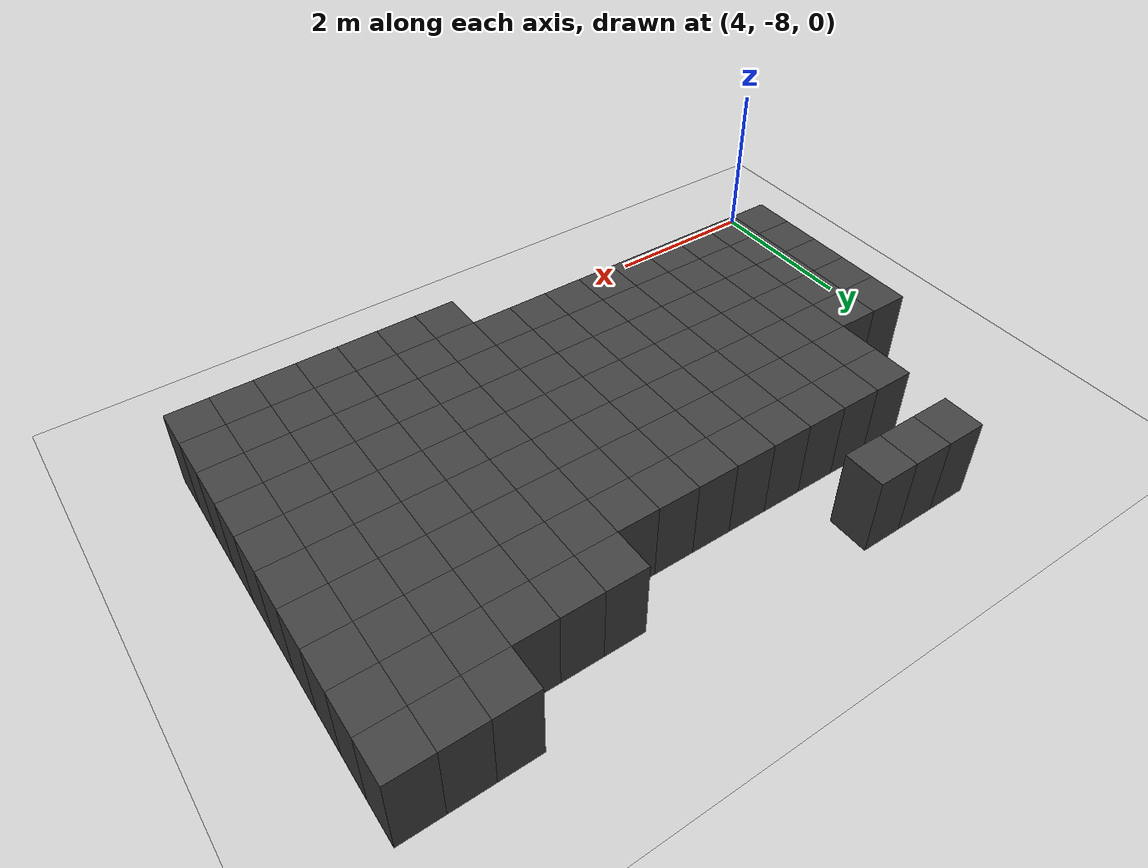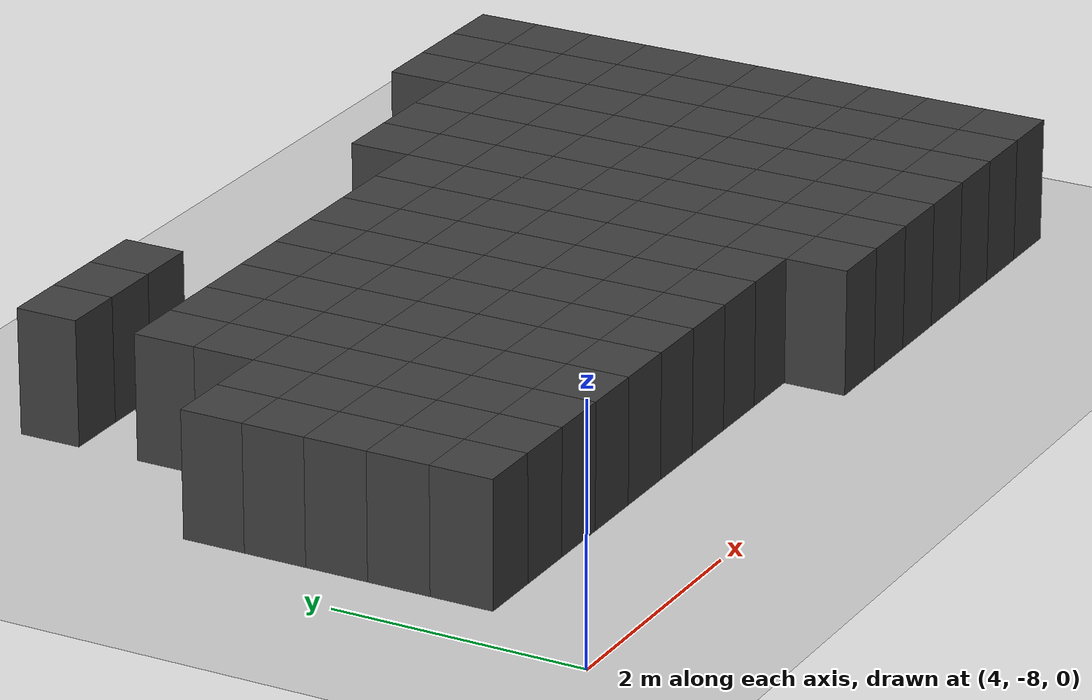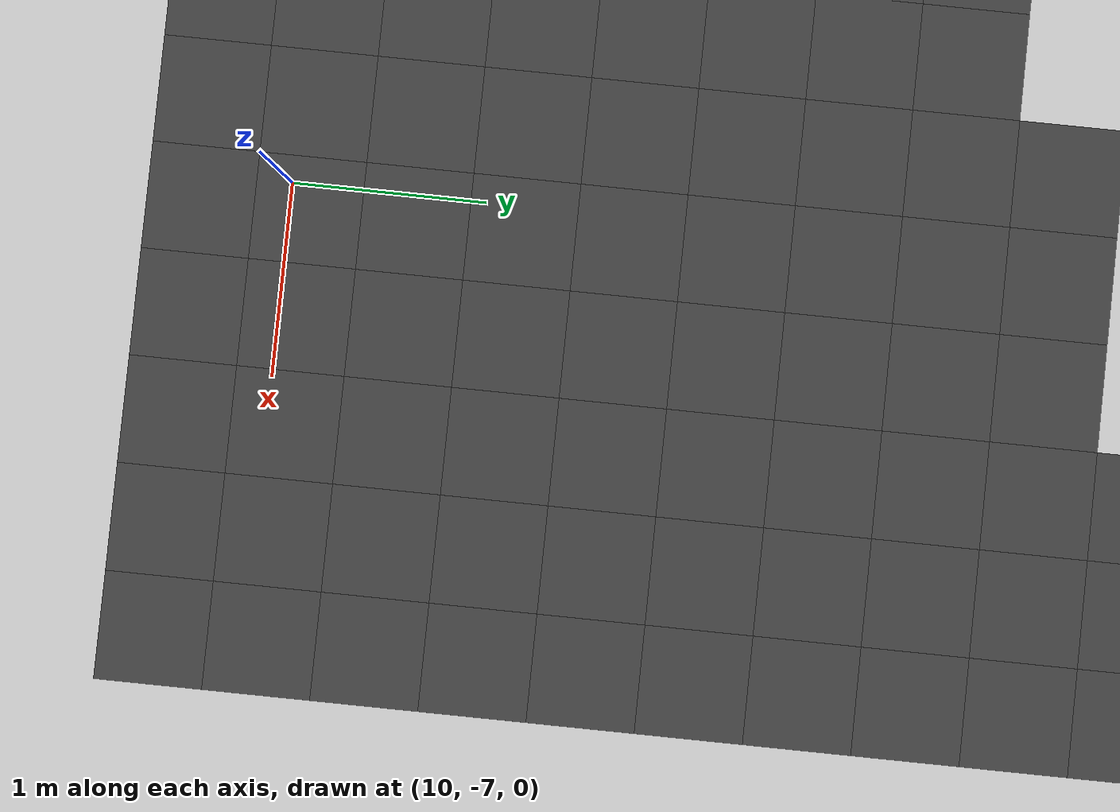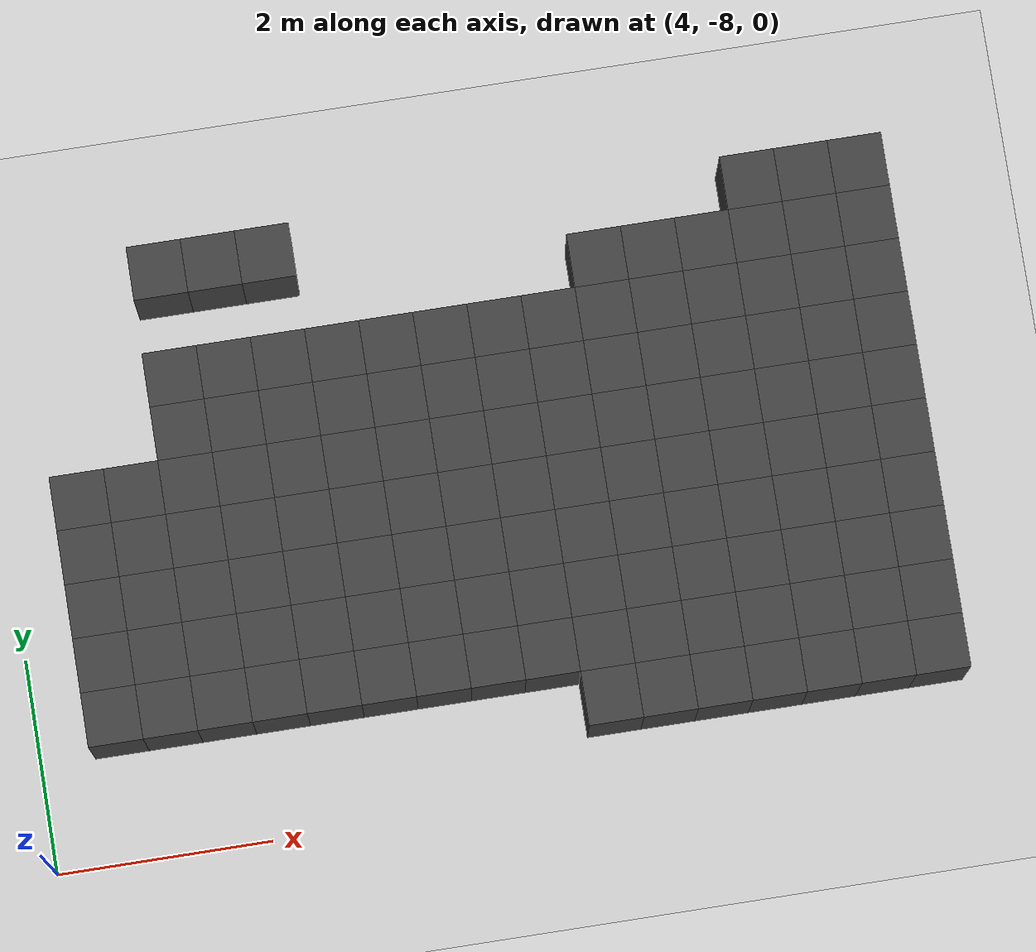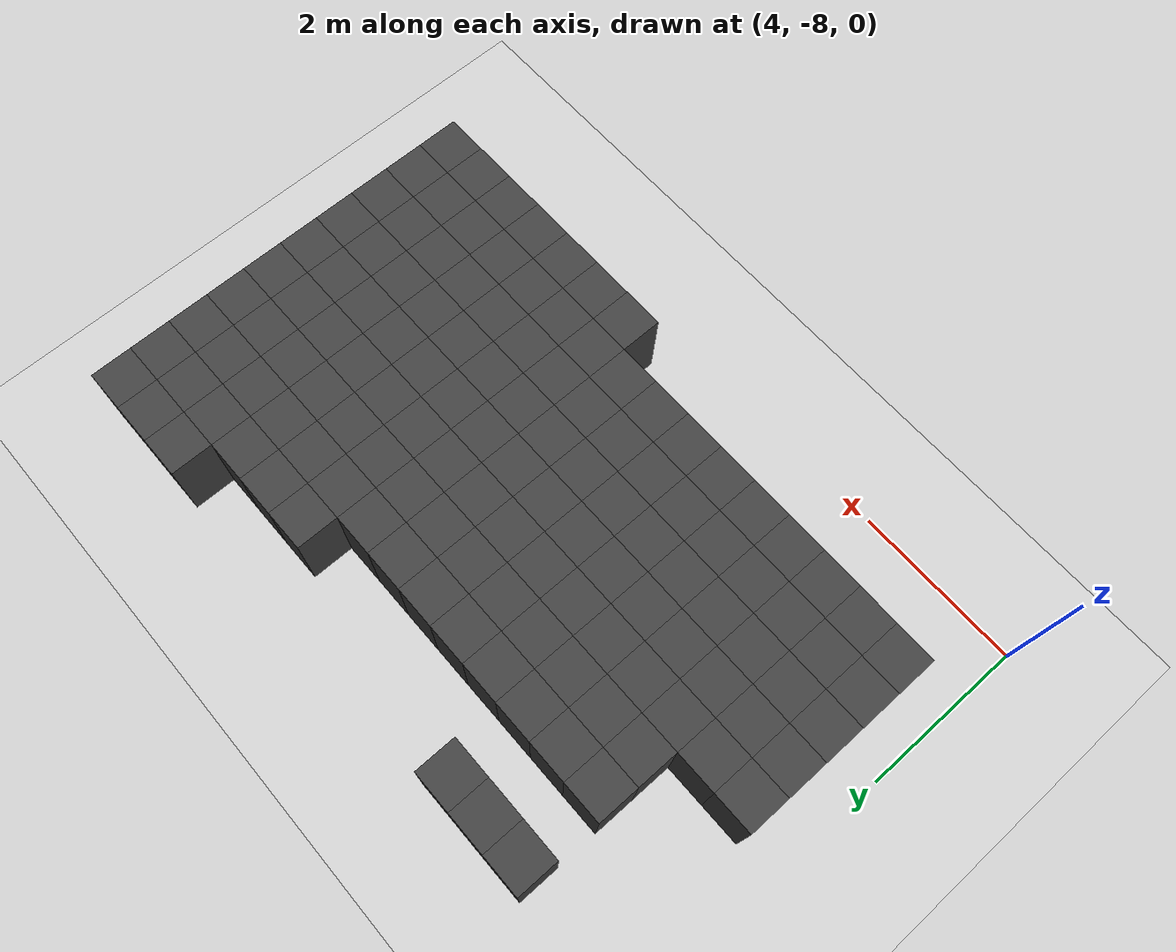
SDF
<sdf version="1.7">
 <world name="map_14056">
  <model name="ground_plane">
   <static>true</static>
   <link name="link">
    <collision name="collision">
     <geometry><plane><normal>0 0 1</normal><size>200 200</size></plane></geometry>
    </collision>
    <visual name="visual">
     <geometry><plane><normal>0 0 1</normal><size>200 200</size></plane></geometry>
     <material><ambient>0.8 0.8 0.8 1</ambient><diffuse>0.8 0.8 0.8 1</diffuse></material>
    </visual>
   </link>
  </model>
  <model name="maze_environment">
   <static>true</static>
   <link name="wall_1097">
    <pose>5.750 -2.750 0.500 0 0 0</pose>
    <collision name="col"><geometry><box><size>0.5 0.5 1.0</size></box></geometry></collision>
    <visual name="vis">
     <geometry><box><size>0.5 0.5 1.0</size></box></geometry>
     <material><ambient>0.15 0.15 0.15 1</ambient><diffuse>0.25 0.25 0.25 1</diffuse></material>
    </visual>
   </link>
   <link name="wall_1098">
    <pose>6.250 -2.750 0.500 0 0 0</pose>
    <collision name="col"><geometry><box><size>0.5 0.5 1.0</size></box></geometry></collision>
    <visual name="vis">
     <geometry><box><size>0.5 0.5 1.0</size></box></geometry>
     <material><ambient>0.15 0.15 0.15 1</ambient><diffuse>0.25 0.25 0.25 1</diffuse></material>
    </visual>
   </link>
   <link name="wall_1099">
    <pose>6.750 -2.750 0.500 0 0 0</pose>
    <collision name="col"><geometry><box><size>0.5 0.5 1.0</size></box></geometry></collision>
    <visual name="vis">
     <geometry><box><size>0.5 0.5 1.0</size></box></geometry>
     <material><ambient>0.15 0.15 0.15 1</ambient><diffuse>0.25 0.25 0.25 1</diffuse></material>
    </visual>
   </link>
   <link name="wall_1100">
    <pose>11.250 -2.750 0.500 0 0 0</pose>
    <collision name="col"><geometry><box><size>0.5 0.5 1.0</size></box></geometry></collision>
    <visual name="vis">
     <geometry><box><size>0.5 0.5 1.0</size></box></geometry>
     <material><ambient>0.15 0.15 0.15 1</ambient><diffuse>0.25 0.25 0.25 1</diffuse></material>
    </visual>
   </link>
   <link name="wall_1101">
    <pose>11.750 -2.750 0.500 0 0 0</pose>
    <collision name="col"><geometry><box><size>0.5 0.5 1.0</size></box></geometry></collision>
    <visual name="vis">
     <geometry><box><size>0.5 0.5 1.0</size></box></geometry>
     <material><ambient>0.15 0.15 0.15 1</ambient><diffuse>0.25 0.25 0.25 1</diffuse></material>
    </visual>
   </link>
   <link name="wall_1102">
    <pose>12.250 -2.750 0.500 0 0 0</pose>
    <collision name="col"><geometry><box><size>0.5 0.5 1.0</size></box></geometry></collision>
    <visual name="vis">
     <geometry><box><size>0.5 0.5 1.0</size></box></geometry>
     <material><ambient>0.15 0.15 0.15 1</ambient><diffuse>0.25 0.25 0.25 1</diffuse></material>
    </visual>
   </link>
   <link name="wall_1125">
    <pose>9.750 -3.250 0.500 0 0 0</pose>
    <collision name="col"><geometry><box><size>0.5 0.5 1.0</size></box></geometry></collision>
    <visual name="vis">
     <geometry><box><size>0.5 0.5 1.0</size></box></geometry>
     <material><ambient>0.15 0.15 0.15 1</ambient><diffuse>0.25 0.25 0.25 1</diffuse></material>
    </visual>
   </link>
   <link name="wall_1126">
    <pose>10.250 -3.250 0.500 0 0 0</pose>
    <collision name="col"><geometry><box><size>0.5 0.5 1.0</size></box></geometry></collision>
    <visual name="vis">
     <geometry><box><size>0.5 0.5 1.0</size></box></geometry>
     <material><ambient>0.15 0.15 0.15 1</ambient><diffuse>0.25 0.25 0.25 1</diffuse></material>
    </visual>
   </link>
   <link name="wall_1127">
    <pose>10.750 -3.250 0.500 0 0 0</pose>
    <collision name="col"><geometry><box><size>0.5 0.5 1.0</size></box></geometry></collision>
    <visual name="vis">
     <geometry><box><size>0.5 0.5 1.0</size></box></geometry>
     <material><ambient>0.15 0.15 0.15 1</ambient><diffuse>0.25 0.25 0.25 1</diffuse></material>
    </visual>
   </link>
   <link name="wall_1128">
    <pose>11.250 -3.250 0.500 0 0 0</pose>
    <collision name="col"><geometry><box><size>0.5 0.5 1.0</size></box></geometry></collision>
    <visual name="vis">
     <geometry><box><size>0.5 0.5 1.0</size></box></geometry>
     <material><ambient>0.15 0.15 0.15 1</ambient><diffuse>0.25 0.25 0.25 1</diffuse></material>
    </visual>
   </link>
   <link name="wall_1129">
    <pose>11.750 -3.250 0.500 0 0 0</pose>
    <collision name="col"><geometry><box><size>0.5 0.5 1.0</size></box></geometry></collision>
    <visual name="vis">
     <geometry><box><size>0.5 0.5 1.0</size></box></geometry>
     <material><ambient>0.15 0.15 0.15 1</ambient><diffuse>0.25 0.25 0.25 1</diffuse></material>
    </visual>
   </link>
   <link name="wall_1130">
    <pose>12.250 -3.250 0.500 0 0 0</pose>
    <collision name="col"><geometry><box><size>0.5 0.5 1.0</size></box></geometry></collision>
    <visual name="vis">
     <geometry><box><size>0.5 0.5 1.0</size></box></geometry>
     <material><ambient>0.15 0.15 0.15 1</ambient><diffuse>0.25 0.25 0.25 1</diffuse></material>
    </visual>
   </link>
   <link name="wall_1153">
    <pose>5.750 -3.750 0.500 0 0 0</pose>
    <collision name="col"><geometry><box><size>0.5 0.5 1.0</size></box></geometry></collision>
    <visual name="vis">
     <geometry><box><size>0.5 0.5 1.0</size></box></geometry>
     <material><ambient>0.15 0.15 0.15 1</ambient><diffuse>0.25 0.25 0.25 1</diffuse></material>
    </visual>
   </link>
   <link name="wall_1154">
    <pose>6.250 -3.750 0.500 0 0 0</pose>
    <collision name="col"><geometry><box><size>0.5 0.5 1.0</size></box></geometry></collision>
    <visual name="vis">
     <geometry><box><size>0.5 0.5 1.0</size></box></geometry>
     <material><ambient>0.15 0.15 0.15 1</ambient><diffuse>0.25 0.25 0.25 1</diffuse></material>
    </visual>
   </link>
   <link name="wall_1155">
    <pose>6.750 -3.750 0.500 0 0 0</pose>
    <collision name="col"><geometry><box><size>0.5 0.5 1.0</size></box></geometry></collision>
    <visual name="vis">
     <geometry><box><size>0.5 0.5 1.0</size></box></geometry>
     <material><ambient>0.15 0.15 0.15 1</ambient><diffuse>0.25 0.25 0.25 1</diffuse></material>
    </visual>
   </link>
   <link name="wall_1156">
    <pose>7.250 -3.750 0.500 0 0 0</pose>
    <collision name="col"><geometry><box><size>0.5 0.5 1.0</size></box></geometry></collision>
    <visual name="vis">
     <geometry><box><size>0.5 0.5 1.0</size></box></geometry>
     <material><ambient>0.15 0.15 0.15 1</ambient><diffuse>0.25 0.25 0.25 1</diffuse></material>
    </visual>
   </link>
   <link name="wall_1157">
    <pose>7.750 -3.750 0.500 0 0 0</pose>
    <collision name="col"><geometry><box><size>0.5 0.5 1.0</size></box></geometry></collision>
    <visual name="vis">
     <geometry><box><size>0.5 0.5 1.0</size></box></geometry>
     <material><ambient>0.15 0.15 0.15 1</ambient><diffuse>0.25 0.25 0.25 1</diffuse></material>
    </visual>
   </link>
   <link name="wall_1158">
    <pose>8.250 -3.750 0.500 0 0 0</pose>
    <collision name="col"><geometry><box><size>0.5 0.5 1.0</size></box></geometry></collision>
    <visual name="vis">
     <geometry><box><size>0.5 0.5 1.0</size></box></geometry>
     <material><ambient>0.15 0.15 0.15 1</ambient><diffuse>0.25 0.25 0.25 1</diffuse></material>
    </visual>
   </link>
   <link name="wall_1159">
    <pose>8.750 -3.750 0.500 0 0 0</pose>
    <collision name="col"><geometry><box><size>0.5 0.5 1.0</size></box></geometry></collision>
    <visual name="vis">
     <geometry><box><size>0.5 0.5 1.0</size></box></geometry>
     <material><ambient>0.15 0.15 0.15 1</ambient><diffuse>0.25 0.25 0.25 1</diffuse></material>
    </visual>
   </link>
   <link name="wall_1160">
    <pose>9.250 -3.750 0.500 0 0 0</pose>
    <collision name="col"><geometry><box><size>0.5 0.5 1.0</size></box></geometry></collision>
    <visual name="vis">
     <geometry><box><size>0.5 0.5 1.0</size></box></geometry>
     <material><ambient>0.15 0.15 0.15 1</ambient><diffuse>0.25 0.25 0.25 1</diffuse></material>
    </visual>
   </link>
   <link name="wall_1161">
    <pose>9.750 -3.750 0.500 0 0 0</pose>
    <collision name="col"><geometry><box><size>0.5 0.5 1.0</size></box></geometry></collision>
    <visual name="vis">
     <geometry><box><size>0.5 0.5 1.0</size></box></geometry>
     <material><ambient>0.15 0.15 0.15 1</ambient><diffuse>0.25 0.25 0.25 1</diffuse></material>
    </visual>
   </link>
   <link name="wall_1162">
    <pose>10.250 -3.750 0.500 0 0 0</pose>
    <collision name="col"><geometry><box><size>0.5 0.5 1.0</size></box></geometry></collision>
    <visual name="vis">
     <geometry><box><size>0.5 0.5 1.0</size></box></geometry>
     <material><ambient>0.15 0.15 0.15 1</ambient><diffuse>0.25 0.25 0.25 1</diffuse></material>
    </visual>
   </link>
   <link name="wall_1163">
    <pose>10.750 -3.750 0.500 0 0 0</pose>
    <collision name="col"><geometry><box><size>0.5 0.5 1.0</size></box></geometry></collision>
    <visual name="vis">
     <geometry><box><size>0.5 0.5 1.0</size></box></geometry>
     <material><ambient>0.15 0.15 0.15 1</ambient><diffuse>0.25 0.25 0.25 1</diffuse></material>
    </visual>
   </link>
   <link name="wall_1164">
    <pose>11.250 -3.750 0.500 0 0 0</pose>
    <collision name="col"><geometry><box><size>0.5 0.5 1.0</size></box></geometry></collision>
    <visual name="vis">
     <geometry><box><size>0.5 0.5 1.0</size></box></geometry>
     <material><ambient>0.15 0.15 0.15 1</ambient><diffuse>0.25 0.25 0.25 1</diffuse></material>
    </visual>
   </link>
   <link name="wall_1165">
    <pose>11.750 -3.750 0.500 0 0 0</pose>
    <collision name="col"><geometry><box><size>0.5 0.5 1.0</size></box></geometry></collision>
    <visual name="vis">
     <geometry><box><size>0.5 0.5 1.0</size></box></geometry>
     <material><ambient>0.15 0.15 0.15 1</ambient><diffuse>0.25 0.25 0.25 1</diffuse></material>
    </visual>
   </link>
   <link name="wall_1166">
    <pose>12.250 -3.750 0.500 0 0 0</pose>
    <collision name="col"><geometry><box><size>0.5 0.5 1.0</size></box></geometry></collision>
    <visual name="vis">
     <geometry><box><size>0.5 0.5 1.0</size></box></geometry>
     <material><ambient>0.15 0.15 0.15 1</ambient><diffuse>0.25 0.25 0.25 1</diffuse></material>
    </visual>
   </link>
   <link name="wall_1185">
    <pose>5.750 -4.250 0.500 0 0 0</pose>
    <collision name="col"><geometry><box><size>0.5 0.5 1.0</size></box></geometry></collision>
    <visual name="vis">
     <geometry><box><size>0.5 0.5 1.0</size></box></geometry>
     <material><ambient>0.15 0.15 0.15 1</ambient><diffuse>0.25 0.25 0.25 1</diffuse></material>
    </visual>
   </link>
   <link name="wall_1186">
    <pose>6.250 -4.250 0.500 0 0 0</pose>
    <collision name="col"><geometry><box><size>0.5 0.5 1.0</size></box></geometry></collision>
    <visual name="vis">
     <geometry><box><size>0.5 0.5 1.0</size></box></geometry>
     <material><ambient>0.15 0.15 0.15 1</ambient><diffuse>0.25 0.25 0.25 1</diffuse></material>
    </visual>
   </link>
   <link name="wall_1187">
    <pose>6.750 -4.250 0.500 0 0 0</pose>
    <collision name="col"><geometry><box><size>0.5 0.5 1.0</size></box></geometry></collision>
    <visual name="vis">
     <geometry><box><size>0.5 0.5 1.0</size></box></geometry>
     <material><ambient>0.15 0.15 0.15 1</ambient><diffuse>0.25 0.25 0.25 1</diffuse></material>
    </visual>
   </link>
   <link name="wall_1188">
    <pose>7.250 -4.250 0.500 0 0 0</pose>
    <collision name="col"><geometry><box><size>0.5 0.5 1.0</size></box></geometry></collision>
    <visual name="vis">
     <geometry><box><size>0.5 0.5 1.0</size></box></geometry>
     <material><ambient>0.15 0.15 0.15 1</ambient><diffuse>0.25 0.25 0.25 1</diffuse></material>
    </visual>
   </link>
   <link name="wall_1189">
    <pose>7.750 -4.250 0.500 0 0 0</pose>
    <collision name="col"><geometry><box><size>0.5 0.5 1.0</size></box></geometry></collision>
    <visual name="vis">
     <geometry><box><size>0.5 0.5 1.0</size></box></geometry>
     <material><ambient>0.15 0.15 0.15 1</ambient><diffuse>0.25 0.25 0.25 1</diffuse></material>
    </visual>
   </link>
   <link name="wall_1190">
    <pose>8.250 -4.250 0.500 0 0 0</pose>
    <collision name="col"><geometry><box><size>0.5 0.5 1.0</size></box></geometry></collision>
    <visual name="vis">
     <geometry><box><size>0.5 0.5 1.0</size></box></geometry>
     <material><ambient>0.15 0.15 0.15 1</ambient><diffuse>0.25 0.25 0.25 1</diffuse></material>
    </visual>
   </link>
   <link name="wall_1191">
    <pose>8.750 -4.250 0.500 0 0 0</pose>
    <collision name="col"><geometry><box><size>0.5 0.5 1.0</size></box></geometry></collision>
    <visual name="vis">
     <geometry><box><size>0.5 0.5 1.0</size></box></geometry>
     <material><ambient>0.15 0.15 0.15 1</ambient><diffuse>0.25 0.25 0.25 1</diffuse></material>
    </visual>
   </link>
   <link name="wall_1192">
    <pose>9.250 -4.250 0.500 0 0 0</pose>
    <collision name="col"><geometry><box><size>0.5 0.5 1.0</size></box></geometry></collision>
    <visual name="vis">
     <geometry><box><size>0.5 0.5 1.0</size></box></geometry>
     <material><ambient>0.15 0.15 0.15 1</ambient><diffuse>0.25 0.25 0.25 1</diffuse></material>
    </visual>
   </link>
   <link name="wall_1193">
    <pose>9.750 -4.250 0.500 0 0 0</pose>
    <collision name="col"><geometry><box><size>0.5 0.5 1.0</size></box></geometry></collision>
    <visual name="vis">
     <geometry><box><size>0.5 0.5 1.0</size></box></geometry>
     <material><ambient>0.15 0.15 0.15 1</ambient><diffuse>0.25 0.25 0.25 1</diffuse></material>
    </visual>
   </link>
   <link name="wall_1194">
    <pose>10.250 -4.250 0.500 0 0 0</pose>
    <collision name="col"><geometry><box><size>0.5 0.5 1.0</size></box></geometry></collision>
    <visual name="vis">
     <geometry><box><size>0.5 0.5 1.0</size></box></geometry>
     <material><ambient>0.15 0.15 0.15 1</ambient><diffuse>0.25 0.25 0.25 1</diffuse></material>
    </visual>
   </link>
   <link name="wall_1195">
    <pose>10.750 -4.250 0.500 0 0 0</pose>
    <collision name="col"><geometry><box><size>0.5 0.5 1.0</size></box></geometry></collision>
    <visual name="vis">
     <geometry><box><size>0.5 0.5 1.0</size></box></geometry>
     <material><ambient>0.15 0.15 0.15 1</ambient><diffuse>0.25 0.25 0.25 1</diffuse></material>
    </visual>
   </link>
   <link name="wall_1196">
    <pose>11.250 -4.250 0.500 0 0 0</pose>
    <collision name="col"><geometry><box><size>0.5 0.5 1.0</size></box></geometry></collision>
    <visual name="vis">
     <geometry><box><size>0.5 0.5 1.0</size></box></geometry>
     <material><ambient>0.15 0.15 0.15 1</ambient><diffuse>0.25 0.25 0.25 1</diffuse></material>
    </visual>
   </link>
   <link name="wall_1197">
    <pose>11.750 -4.250 0.500 0 0 0</pose>
    <collision name="col"><geometry><box><size>0.5 0.5 1.0</size></box></geometry></collision>
    <visual name="vis">
     <geometry><box><size>0.5 0.5 1.0</size></box></geometry>
     <material><ambient>0.15 0.15 0.15 1</ambient><diffuse>0.25 0.25 0.25 1</diffuse></material>
    </visual>
   </link>
   <link name="wall_1198">
    <pose>12.250 -4.250 0.500 0 0 0</pose>
    <collision name="col"><geometry><box><size>0.5 0.5 1.0</size></box></geometry></collision>
    <visual name="vis">
     <geometry><box><size>0.5 0.5 1.0</size></box></geometry>
     <material><ambient>0.15 0.15 0.15 1</ambient><diffuse>0.25 0.25 0.25 1</diffuse></material>
    </visual>
   </link>
   <link name="wall_1224">
    <pose>4.750 -4.750 0.500 0 0 0</pose>
    <collision name="col"><geometry><box><size>0.5 0.5 1.0</size></box></geometry></collision>
    <visual name="vis">
     <geometry><box><size>0.5 0.5 1.0</size></box></geometry>
     <material><ambient>0.15 0.15 0.15 1</ambient><diffuse>0.25 0.25 0.25 1</diffuse></material>
    </visual>
   </link>
   <link name="wall_1225">
    <pose>5.250 -4.750 0.500 0 0 0</pose>
    <collision name="col"><geometry><box><size>0.5 0.5 1.0</size></box></geometry></collision>
    <visual name="vis">
     <geometry><box><size>0.5 0.5 1.0</size></box></geometry>
     <material><ambient>0.15 0.15 0.15 1</ambient><diffuse>0.25 0.25 0.25 1</diffuse></material>
    </visual>
   </link>
   <link name="wall_1226">
    <pose>5.750 -4.750 0.500 0 0 0</pose>
    <collision name="col"><geometry><box><size>0.5 0.5 1.0</size></box></geometry></collision>
    <visual name="vis">
     <geometry><box><size>0.5 0.5 1.0</size></box></geometry>
     <material><ambient>0.15 0.15 0.15 1</ambient><diffuse>0.25 0.25 0.25 1</diffuse></material>
    </visual>
   </link>
   <link name="wall_1227">
    <pose>6.250 -4.750 0.500 0 0 0</pose>
    <collision name="col"><geometry><box><size>0.5 0.5 1.0</size></box></geometry></collision>
    <visual name="vis">
     <geometry><box><size>0.5 0.5 1.0</size></box></geometry>
     <material><ambient>0.15 0.15 0.15 1</ambient><diffuse>0.25 0.25 0.25 1</diffuse></material>
    </visual>
   </link>
   <link name="wall_1228">
    <pose>6.750 -4.750 0.500 0 0 0</pose>
    <collision name="col"><geometry><box><size>0.5 0.5 1.0</size></box></geometry></collision>
    <visual name="vis">
     <geometry><box><size>0.5 0.5 1.0</size></box></geometry>
     <material><ambient>0.15 0.15 0.15 1</ambient><diffuse>0.25 0.25 0.25 1</diffuse></material>
    </visual>
   </link>
   <link name="wall_1229">
    <pose>7.250 -4.750 0.500 0 0 0</pose>
    <collision name="col"><geometry><box><size>0.5 0.5 1.0</size></box></geometry></collision>
    <visual name="vis">
     <geometry><box><size>0.5 0.5 1.0</size></box></geometry>
     <material><ambient>0.15 0.15 0.15 1</ambient><diffuse>0.25 0.25 0.25 1</diffuse></material>
    </visual>
   </link>
   <link name="wall_1230">
    <pose>7.750 -4.750 0.500 0 0 0</pose>
    <collision name="col"><geometry><box><size>0.5 0.5 1.0</size></box></geometry></collision>
    <visual name="vis">
     <geometry><box><size>0.5 0.5 1.0</size></box></geometry>
     <material><ambient>0.15 0.15 0.15 1</ambient><diffuse>0.25 0.25 0.25 1</diffuse></material>
    </visual>
   </link>
   <link name="wall_1231">
    <pose>8.250 -4.750 0.500 0 0 0</pose>
    <collision name="col"><geometry><box><size>0.5 0.5 1.0</size></box></geometry></collision>
    <visual name="vis">
     <geometry><box><size>0.5 0.5 1.0</size></box></geometry>
     <material><ambient>0.15 0.15 0.15 1</ambient><diffuse>0.25 0.25 0.25 1</diffuse></material>
    </visual>
   </link>
   <link name="wall_1232">
    <pose>8.750 -4.750 0.500 0 0 0</pose>
    <collision name="col"><geometry><box><size>0.5 0.5 1.0</size></box></geometry></collision>
    <visual name="vis">
     <geometry><box><size>0.5 0.5 1.0</size></box></geometry>
     <material><ambient>0.15 0.15 0.15 1</ambient><diffuse>0.25 0.25 0.25 1</diffuse></material>
    </visual>
   </link>
   <link name="wall_1233">
    <pose>9.250 -4.750 0.500 0 0 0</pose>
    <collision name="col"><geometry><box><size>0.5 0.5 1.0</size></box></geometry></collision>
    <visual name="vis">
     <geometry><box><size>0.5 0.5 1.0</size></box></geometry>
     <material><ambient>0.15 0.15 0.15 1</ambient><diffuse>0.25 0.25 0.25 1</diffuse></material>
    </visual>
   </link>
   <link name="wall_1234">
    <pose>9.750 -4.750 0.500 0 0 0</pose>
    <collision name="col"><geometry><box><size>0.5 0.5 1.0</size></box></geometry></collision>
    <visual name="vis">
     <geometry><box><size>0.5 0.5 1.0</size></box></geometry>
     <material><ambient>0.15 0.15 0.15 1</ambient><diffuse>0.25 0.25 0.25 1</diffuse></material>
    </visual>
   </link>
   <link name="wall_1235">
    <pose>10.250 -4.750 0.500 0 0 0</pose>
    <collision name="col"><geometry><box><size>0.5 0.5 1.0</size></box></geometry></collision>
    <visual name="vis">
     <geometry><box><size>0.5 0.5 1.0</size></box></geometry>
     <material><ambient>0.15 0.15 0.15 1</ambient><diffuse>0.25 0.25 0.25 1</diffuse></material>
    </visual>
   </link>
   <link name="wall_1236">
    <pose>10.750 -4.750 0.500 0 0 0</pose>
    <collision name="col"><geometry><box><size>0.5 0.5 1.0</size></box></geometry></collision>
    <visual name="vis">
     <geometry><box><size>0.5 0.5 1.0</size></box></geometry>
     <material><ambient>0.15 0.15 0.15 1</ambient><diffuse>0.25 0.25 0.25 1</diffuse></material>
    </visual>
   </link>
   <link name="wall_1237">
    <pose>11.250 -4.750 0.500 0 0 0</pose>
    <collision name="col"><geometry><box><size>0.5 0.5 1.0</size></box></geometry></collision>
    <visual name="vis">
     <geometry><box><size>0.5 0.5 1.0</size></box></geometry>
     <material><ambient>0.15 0.15 0.15 1</ambient><diffuse>0.25 0.25 0.25 1</diffuse></material>
    </visual>
   </link>
   <link name="wall_1238">
    <pose>11.750 -4.750 0.500 0 0 0</pose>
    <collision name="col"><geometry><box><size>0.5 0.5 1.0</size></box></geometry></collision>
    <visual name="vis">
     <geometry><box><size>0.5 0.5 1.0</size></box></geometry>
     <material><ambient>0.15 0.15 0.15 1</ambient><diffuse>0.25 0.25 0.25 1</diffuse></material>
    </visual>
   </link>
   <link name="wall_1239">
    <pose>12.250 -4.750 0.500 0 0 0</pose>
    <collision name="col"><geometry><box><size>0.5 0.5 1.0</size></box></geometry></collision>
    <visual name="vis">
     <geometry><box><size>0.5 0.5 1.0</size></box></geometry>
     <material><ambient>0.15 0.15 0.15 1</ambient><diffuse>0.25 0.25 0.25 1</diffuse></material>
    </visual>
   </link>
   <link name="wall_1265">
    <pose>4.750 -5.250 0.500 0 0 0</pose>
    <collision name="col"><geometry><box><size>0.5 0.5 1.0</size></box></geometry></collision>
    <visual name="vis">
     <geometry><box><size>0.5 0.5 1.0</size></box></geometry>
     <material><ambient>0.15 0.15 0.15 1</ambient><diffuse>0.25 0.25 0.25 1</diffuse></material>
    </visual>
   </link>
   <link name="wall_1266">
    <pose>5.250 -5.250 0.500 0 0 0</pose>
    <collision name="col"><geometry><box><size>0.5 0.5 1.0</size></box></geometry></collision>
    <visual name="vis">
     <geometry><box><size>0.5 0.5 1.0</size></box></geometry>
     <material><ambient>0.15 0.15 0.15 1</ambient><diffuse>0.25 0.25 0.25 1</diffuse></material>
    </visual>
   </link>
   <link name="wall_1267">
    <pose>5.750 -5.250 0.500 0 0 0</pose>
    <collision name="col"><geometry><box><size>0.5 0.5 1.0</size></box></geometry></collision>
    <visual name="vis">
     <geometry><box><size>0.5 0.5 1.0</size></box></geometry>
     <material><ambient>0.15 0.15 0.15 1</ambient><diffuse>0.25 0.25 0.25 1</diffuse></material>
    </visual>
   </link>
   <link name="wall_1268">
    <pose>6.250 -5.250 0.500 0 0 0</pose>
    <collision name="col"><geometry><box><size>0.5 0.5 1.0</size></box></geometry></collision>
    <visual name="vis">
     <geometry><box><size>0.5 0.5 1.0</size></box></geometry>
     <material><ambient>0.15 0.15 0.15 1</ambient><diffuse>0.25 0.25 0.25 1</diffuse></material>
    </visual>
   </link>
   <link name="wall_1269">
    <pose>6.750 -5.250 0.500 0 0 0</pose>
    <collision name="col"><geometry><box><size>0.5 0.5 1.0</size></box></geometry></collision>
    <visual name="vis">
     <geometry><box><size>0.5 0.5 1.0</size></box></geometry>
     <material><ambient>0.15 0.15 0.15 1</ambient><diffuse>0.25 0.25 0.25 1</diffuse></material>
    </visual>
   </link>
   <link name="wall_1270">
    <pose>7.250 -5.250 0.500 0 0 0</pose>
    <collision name="col"><geometry><box><size>0.5 0.5 1.0</size></box></geometry></collision>
    <visual name="vis">
     <geometry><box><size>0.5 0.5 1.0</size></box></geometry>
     <material><ambient>0.15 0.15 0.15 1</ambient><diffuse>0.25 0.25 0.25 1</diffuse></material>
    </visual>
   </link>
   <link name="wall_1271">
    <pose>7.750 -5.250 0.500 0 0 0</pose>
    <collision name="col"><geometry><box><size>0.5 0.5 1.0</size></box></geometry></collision>
    <visual name="vis">
     <geometry><box><size>0.5 0.5 1.0</size></box></geometry>
     <material><ambient>0.15 0.15 0.15 1</ambient><diffuse>0.25 0.25 0.25 1</diffuse></material>
    </visual>
   </link>
   <link name="wall_1272">
    <pose>8.250 -5.250 0.500 0 0 0</pose>
    <collision name="col"><geometry><box><size>0.5 0.5 1.0</size></box></geometry></collision>
    <visual name="vis">
     <geometry><box><size>0.5 0.5 1.0</size></box></geometry>
     <material><ambient>0.15 0.15 0.15 1</ambient><diffuse>0.25 0.25 0.25 1</diffuse></material>
    </visual>
   </link>
   <link name="wall_1273">
    <pose>8.750 -5.250 0.500 0 0 0</pose>
    <collision name="col"><geometry><box><size>0.5 0.5 1.0</size></box></geometry></collision>
    <visual name="vis">
     <geometry><box><size>0.5 0.5 1.0</size></box></geometry>
     <material><ambient>0.15 0.15 0.15 1</ambient><diffuse>0.25 0.25 0.25 1</diffuse></material>
    </visual>
   </link>
   <link name="wall_1274">
    <pose>9.250 -5.250 0.500 0 0 0</pose>
    <collision name="col"><geometry><box><size>0.5 0.5 1.0</size></box></geometry></collision>
    <visual name="vis">
     <geometry><box><size>0.5 0.5 1.0</size></box></geometry>
     <material><ambient>0.15 0.15 0.15 1</ambient><diffuse>0.25 0.25 0.25 1</diffuse></material>
    </visual>
   </link>
   <link name="wall_1275">
    <pose>9.750 -5.250 0.500 0 0 0</pose>
    <collision name="col"><geometry><box><size>0.5 0.5 1.0</size></box></geometry></collision>
    <visual name="vis">
     <geometry><box><size>0.5 0.5 1.0</size></box></geometry>
     <material><ambient>0.15 0.15 0.15 1</ambient><diffuse>0.25 0.25 0.25 1</diffuse></material>
    </visual>
   </link>
   <link name="wall_1276">
    <pose>10.250 -5.250 0.500 0 0 0</pose>
    <collision name="col"><geometry><box><size>0.5 0.5 1.0</size></box></geometry></collision>
    <visual name="vis">
     <geometry><box><size>0.5 0.5 1.0</size></box></geometry>
     <material><ambient>0.15 0.15 0.15 1</ambient><diffuse>0.25 0.25 0.25 1</diffuse></material>
    </visual>
   </link>
   <link name="wall_1277">
    <pose>10.750 -5.250 0.500 0 0 0</pose>
    <collision name="col"><geometry><box><size>0.5 0.5 1.0</size></box></geometry></collision>
    <visual name="vis">
     <geometry><box><size>0.5 0.5 1.0</size></box></geometry>
     <material><ambient>0.15 0.15 0.15 1</ambient><diffuse>0.25 0.25 0.25 1</diffuse></material>
    </visual>
   </link>
   <link name="wall_1278">
    <pose>11.250 -5.250 0.500 0 0 0</pose>
    <collision name="col"><geometry><box><size>0.5 0.5 1.0</size></box></geometry></collision>
    <visual name="vis">
     <geometry><box><size>0.5 0.5 1.0</size></box></geometry>
     <material><ambient>0.15 0.15 0.15 1</ambient><diffuse>0.25 0.25 0.25 1</diffuse></material>
    </visual>
   </link>
   <link name="wall_1279">
    <pose>11.750 -5.250 0.500 0 0 0</pose>
    <collision name="col"><geometry><box><size>0.5 0.5 1.0</size></box></geometry></collision>
    <visual name="vis">
     <geometry><box><size>0.5 0.5 1.0</size></box></geometry>
     <material><ambient>0.15 0.15 0.15 1</ambient><diffuse>0.25 0.25 0.25 1</diffuse></material>
    </visual>
   </link>
   <link name="wall_1280">
    <pose>12.250 -5.250 0.500 0 0 0</pose>
    <collision name="col"><geometry><box><size>0.5 0.5 1.0</size></box></geometry></collision>
    <visual name="vis">
     <geometry><box><size>0.5 0.5 1.0</size></box></geometry>
     <material><ambient>0.15 0.15 0.15 1</ambient><diffuse>0.25 0.25 0.25 1</diffuse></material>
    </visual>
   </link>
   <link name="wall_1298">
    <pose>4.750 -5.750 0.500 0 0 0</pose>
    <collision name="col"><geometry><box><size>0.5 0.5 1.0</size></box></geometry></collision>
    <visual name="vis">
     <geometry><box><size>0.5 0.5 1.0</size></box></geometry>
     <material><ambient>0.15 0.15 0.15 1</ambient><diffuse>0.25 0.25 0.25 1</diffuse></material>
    </visual>
   </link>
   <link name="wall_1299">
    <pose>5.250 -5.750 0.500 0 0 0</pose>
    <collision name="col"><geometry><box><size>0.5 0.5 1.0</size></box></geometry></collision>
    <visual name="vis">
     <geometry><box><size>0.5 0.5 1.0</size></box></geometry>
     <material><ambient>0.15 0.15 0.15 1</ambient><diffuse>0.25 0.25 0.25 1</diffuse></material>
    </visual>
   </link>
   <link name="wall_1300">
    <pose>5.750 -5.750 0.500 0 0 0</pose>
    <collision name="col"><geometry><box><size>0.5 0.5 1.0</size></box></geometry></collision>
    <visual name="vis">
     <geometry><box><size>0.5 0.5 1.0</size></box></geometry>
     <material><ambient>0.15 0.15 0.15 1</ambient><diffuse>0.25 0.25 0.25 1</diffuse></material>
    </visual>
   </link>
   <link name="wall_1301">
    <pose>6.250 -5.750 0.500 0 0 0</pose>
    <collision name="col"><geometry><box><size>0.5 0.5 1.0</size></box></geometry></collision>
    <visual name="vis">
     <geometry><box><size>0.5 0.5 1.0</size></box></geometry>
     <material><ambient>0.15 0.15 0.15 1</ambient><diffuse>0.25 0.25 0.25 1</diffuse></material>
    </visual>
   </link>
   <link name="wall_1302">
    <pose>6.750 -5.750 0.500 0 0 0</pose>
    <collision name="col"><geometry><box><size>0.5 0.5 1.0</size></box></geometry></collision>
    <visual name="vis">
     <geometry><box><size>0.5 0.5 1.0</size></box></geometry>
     <material><ambient>0.15 0.15 0.15 1</ambient><diffuse>0.25 0.25 0.25 1</diffuse></material>
    </visual>
   </link>
   <link name="wall_1303">
    <pose>7.250 -5.750 0.500 0 0 0</pose>
    <collision name="col"><geometry><box><size>0.5 0.5 1.0</size></box></geometry></collision>
    <visual name="vis">
     <geometry><box><size>0.5 0.5 1.0</size></box></geometry>
     <material><ambient>0.15 0.15 0.15 1</ambient><diffuse>0.25 0.25 0.25 1</diffuse></material>
    </visual>
   </link>
   <link name="wall_1304">
    <pose>7.750 -5.750 0.500 0 0 0</pose>
    <collision name="col"><geometry><box><size>0.5 0.5 1.0</size></box></geometry></collision>
    <visual name="vis">
     <geometry><box><size>0.5 0.5 1.0</size></box></geometry>
     <material><ambient>0.15 0.15 0.15 1</ambient><diffuse>0.25 0.25 0.25 1</diffuse></material>
    </visual>
   </link>
   <link name="wall_1305">
    <pose>8.250 -5.750 0.500 0 0 0</pose>
    <collision name="col"><geometry><box><size>0.5 0.5 1.0</size></box></geometry></collision>
    <visual name="vis">
     <geometry><box><size>0.5 0.5 1.0</size></box></geometry>
     <material><ambient>0.15 0.15 0.15 1</ambient><diffuse>0.25 0.25 0.25 1</diffuse></material>
    </visual>
   </link>
   <link name="wall_1306">
    <pose>8.750 -5.750 0.500 0 0 0</pose>
    <collision name="col"><geometry><box><size>0.5 0.5 1.0</size></box></geometry></collision>
    <visual name="vis">
     <geometry><box><size>0.5 0.5 1.0</size></box></geometry>
     <material><ambient>0.15 0.15 0.15 1</ambient><diffuse>0.25 0.25 0.25 1</diffuse></material>
    </visual>
   </link>
   <link name="wall_1307">
    <pose>9.250 -5.750 0.500 0 0 0</pose>
    <collision name="col"><geometry><box><size>0.5 0.5 1.0</size></box></geometry></collision>
    <visual name="vis">
     <geometry><box><size>0.5 0.5 1.0</size></box></geometry>
     <material><ambient>0.15 0.15 0.15 1</ambient><diffuse>0.25 0.25 0.25 1</diffuse></material>
    </visual>
   </link>
   <link name="wall_1308">
    <pose>9.750 -5.750 0.500 0 0 0</pose>
    <collision name="col"><geometry><box><size>0.5 0.5 1.0</size></box></geometry></collision>
    <visual name="vis">
     <geometry><box><size>0.5 0.5 1.0</size></box></geometry>
     <material><ambient>0.15 0.15 0.15 1</ambient><diffuse>0.25 0.25 0.25 1</diffuse></material>
    </visual>
   </link>
   <link name="wall_1309">
    <pose>10.250 -5.750 0.500 0 0 0</pose>
    <collision name="col"><geometry><box><size>0.5 0.5 1.0</size></box></geometry></collision>
    <visual name="vis">
     <geometry><box><size>0.5 0.5 1.0</size></box></geometry>
     <material><ambient>0.15 0.15 0.15 1</ambient><diffuse>0.25 0.25 0.25 1</diffuse></material>
    </visual>
   </link>
   <link name="wall_1310">
    <pose>10.750 -5.750 0.500 0 0 0</pose>
    <collision name="col"><geometry><box><size>0.5 0.5 1.0</size></box></geometry></collision>
    <visual name="vis">
     <geometry><box><size>0.5 0.5 1.0</size></box></geometry>
     <material><ambient>0.15 0.15 0.15 1</ambient><diffuse>0.25 0.25 0.25 1</diffuse></material>
    </visual>
   </link>
   <link name="wall_1311">
    <pose>11.250 -5.750 0.500 0 0 0</pose>
    <collision name="col"><geometry><box><size>0.5 0.5 1.0</size></box></geometry></collision>
    <visual name="vis">
     <geometry><box><size>0.5 0.5 1.0</size></box></geometry>
     <material><ambient>0.15 0.15 0.15 1</ambient><diffuse>0.25 0.25 0.25 1</diffuse></material>
    </visual>
   </link>
   <link name="wall_1312">
    <pose>11.750 -5.750 0.500 0 0 0</pose>
    <collision name="col"><geometry><box><size>0.5 0.5 1.0</size></box></geometry></collision>
    <visual name="vis">
     <geometry><box><size>0.5 0.5 1.0</size></box></geometry>
     <material><ambient>0.15 0.15 0.15 1</ambient><diffuse>0.25 0.25 0.25 1</diffuse></material>
    </visual>
   </link>
   <link name="wall_1313">
    <pose>12.250 -5.750 0.500 0 0 0</pose>
    <collision name="col"><geometry><box><size>0.5 0.5 1.0</size></box></geometry></collision>
    <visual name="vis">
     <geometry><box><size>0.5 0.5 1.0</size></box></geometry>
     <material><ambient>0.15 0.15 0.15 1</ambient><diffuse>0.25 0.25 0.25 1</diffuse></material>
    </visual>
   </link>
   <link name="wall_1331">
    <pose>4.750 -6.250 0.500 0 0 0</pose>
    <collision name="col"><geometry><box><size>0.5 0.5 1.0</size></box></geometry></collision>
    <visual name="vis">
     <geometry><box><size>0.5 0.5 1.0</size></box></geometry>
     <material><ambient>0.15 0.15 0.15 1</ambient><diffuse>0.25 0.25 0.25 1</diffuse></material>
    </visual>
   </link>
   <link name="wall_1332">
    <pose>5.250 -6.250 0.500 0 0 0</pose>
    <collision name="col"><geometry><box><size>0.5 0.5 1.0</size></box></geometry></collision>
    <visual name="vis">
     <geometry><box><size>0.5 0.5 1.0</size></box></geometry>
     <material><ambient>0.15 0.15 0.15 1</ambient><diffuse>0.25 0.25 0.25 1</diffuse></material>
    </visual>
   </link>
   <link name="wall_1333">
    <pose>5.750 -6.250 0.500 0 0 0</pose>
    <collision name="col"><geometry><box><size>0.5 0.5 1.0</size></box></geometry></collision>
    <visual name="vis">
     <geometry><box><size>0.5 0.5 1.0</size></box></geometry>
     <material><ambient>0.15 0.15 0.15 1</ambient><diffuse>0.25 0.25 0.25 1</diffuse></material>
    </visual>
   </link>
   <link name="wall_1334">
    <pose>6.250 -6.250 0.500 0 0 0</pose>
    <collision name="col"><geometry><box><size>0.5 0.5 1.0</size></box></geometry></collision>
    <visual name="vis">
     <geometry><box><size>0.5 0.5 1.0</size></box></geometry>
     <material><ambient>0.15 0.15 0.15 1</ambient><diffuse>0.25 0.25 0.25 1</diffuse></material>
    </visual>
   </link>
   <link name="wall_1335">
    <pose>6.750 -6.250 0.500 0 0 0</pose>
    <collision name="col"><geometry><box><size>0.5 0.5 1.0</size></box></geometry></collision>
    <visual name="vis">
     <geometry><box><size>0.5 0.5 1.0</size></box></geometry>
     <material><ambient>0.15 0.15 0.15 1</ambient><diffuse>0.25 0.25 0.25 1</diffuse></material>
    </visual>
   </link>
   <link name="wall_1336">
    <pose>7.250 -6.250 0.500 0 0 0</pose>
    <collision name="col"><geometry><box><size>0.5 0.5 1.0</size></box></geometry></collision>
    <visual name="vis">
     <geometry><box><size>0.5 0.5 1.0</size></box></geometry>
     <material><ambient>0.15 0.15 0.15 1</ambient><diffuse>0.25 0.25 0.25 1</diffuse></material>
    </visual>
   </link>
   <link name="wall_1337">
    <pose>7.750 -6.250 0.500 0 0 0</pose>
    <collision name="col"><geometry><box><size>0.5 0.5 1.0</size></box></geometry></collision>
    <visual name="vis">
     <geometry><box><size>0.5 0.5 1.0</size></box></geometry>
     <material><ambient>0.15 0.15 0.15 1</ambient><diffuse>0.25 0.25 0.25 1</diffuse></material>
    </visual>
   </link>
   <link name="wall_1338">
    <pose>8.250 -6.250 0.500 0 0 0</pose>
    <collision name="col"><geometry><box><size>0.5 0.5 1.0</size></box></geometry></collision>
    <visual name="vis">
     <geometry><box><size>0.5 0.5 1.0</size></box></geometry>
     <material><ambient>0.15 0.15 0.15 1</ambient><diffuse>0.25 0.25 0.25 1</diffuse></material>
    </visual>
   </link>
   <link name="wall_1339">
    <pose>8.750 -6.250 0.500 0 0 0</pose>
    <collision name="col"><geometry><box><size>0.5 0.5 1.0</size></box></geometry></collision>
    <visual name="vis">
     <geometry><box><size>0.5 0.5 1.0</size></box></geometry>
     <material><ambient>0.15 0.15 0.15 1</ambient><diffuse>0.25 0.25 0.25 1</diffuse></material>
    </visual>
   </link>
   <link name="wall_1340">
    <pose>9.250 -6.250 0.500 0 0 0</pose>
    <collision name="col"><geometry><box><size>0.5 0.5 1.0</size></box></geometry></collision>
    <visual name="vis">
     <geometry><box><size>0.5 0.5 1.0</size></box></geometry>
     <material><ambient>0.15 0.15 0.15 1</ambient><diffuse>0.25 0.25 0.25 1</diffuse></material>
    </visual>
   </link>
   <link name="wall_1341">
    <pose>9.750 -6.250 0.500 0 0 0</pose>
    <collision name="col"><geometry><box><size>0.5 0.5 1.0</size></box></geometry></collision>
    <visual name="vis">
     <geometry><box><size>0.5 0.5 1.0</size></box></geometry>
     <material><ambient>0.15 0.15 0.15 1</ambient><diffuse>0.25 0.25 0.25 1</diffuse></material>
    </visual>
   </link>
   <link name="wall_1342">
    <pose>10.250 -6.250 0.500 0 0 0</pose>
    <collision name="col"><geometry><box><size>0.5 0.5 1.0</size></box></geometry></collision>
    <visual name="vis">
     <geometry><box><size>0.5 0.5 1.0</size></box></geometry>
     <material><ambient>0.15 0.15 0.15 1</ambient><diffuse>0.25 0.25 0.25 1</diffuse></material>
    </visual>
   </link>
   <link name="wall_1343">
    <pose>10.750 -6.250 0.500 0 0 0</pose>
    <collision name="col"><geometry><box><size>0.5 0.5 1.0</size></box></geometry></collision>
    <visual name="vis">
     <geometry><box><size>0.5 0.5 1.0</size></box></geometry>
     <material><ambient>0.15 0.15 0.15 1</ambient><diffuse>0.25 0.25 0.25 1</diffuse></material>
    </visual>
   </link>
   <link name="wall_1344">
    <pose>11.250 -6.250 0.500 0 0 0</pose>
    <collision name="col"><geometry><box><size>0.5 0.5 1.0</size></box></geometry></collision>
    <visual name="vis">
     <geometry><box><size>0.5 0.5 1.0</size></box></geometry>
     <material><ambient>0.15 0.15 0.15 1</ambient><diffuse>0.25 0.25 0.25 1</diffuse></material>
    </visual>
   </link>
   <link name="wall_1345">
    <pose>11.750 -6.250 0.500 0 0 0</pose>
    <collision name="col"><geometry><box><size>0.5 0.5 1.0</size></box></geometry></collision>
    <visual name="vis">
     <geometry><box><size>0.5 0.5 1.0</size></box></geometry>
     <material><ambient>0.15 0.15 0.15 1</ambient><diffuse>0.25 0.25 0.25 1</diffuse></material>
    </visual>
   </link>
   <link name="wall_1346">
    <pose>12.250 -6.250 0.500 0 0 0</pose>
    <collision name="col"><geometry><box><size>0.5 0.5 1.0</size></box></geometry></collision>
    <visual name="vis">
     <geometry><box><size>0.5 0.5 1.0</size></box></geometry>
     <material><ambient>0.15 0.15 0.15 1</ambient><diffuse>0.25 0.25 0.25 1</diffuse></material>
    </visual>
   </link>
   <link name="wall_1362">
    <pose>4.750 -6.750 0.500 0 0 0</pose>
    <collision name="col"><geometry><box><size>0.5 0.5 1.0</size></box></geometry></collision>
    <visual name="vis">
     <geometry><box><size>0.5 0.5 1.0</size></box></geometry>
     <material><ambient>0.15 0.15 0.15 1</ambient><diffuse>0.25 0.25 0.25 1</diffuse></material>
    </visual>
   </link>
   <link name="wall_1363">
    <pose>5.250 -6.750 0.500 0 0 0</pose>
    <collision name="col"><geometry><box><size>0.5 0.5 1.0</size></box></geometry></collision>
    <visual name="vis">
     <geometry><box><size>0.5 0.5 1.0</size></box></geometry>
     <material><ambient>0.15 0.15 0.15 1</ambient><diffuse>0.25 0.25 0.25 1</diffuse></material>
    </visual>
   </link>
   <link name="wall_1364">
    <pose>5.750 -6.750 0.500 0 0 0</pose>
    <collision name="col"><geometry><box><size>0.5 0.5 1.0</size></box></geometry></collision>
    <visual name="vis">
     <geometry><box><size>0.5 0.5 1.0</size></box></geometry>
     <material><ambient>0.15 0.15 0.15 1</ambient><diffuse>0.25 0.25 0.25 1</diffuse></material>
    </visual>
   </link>
   <link name="wall_1365">
    <pose>6.250 -6.750 0.500 0 0 0</pose>
    <collision name="col"><geometry><box><size>0.5 0.5 1.0</size></box></geometry></collision>
    <visual name="vis">
     <geometry><box><size>0.5 0.5 1.0</size></box></geometry>
     <material><ambient>0.15 0.15 0.15 1</ambient><diffuse>0.25 0.25 0.25 1</diffuse></material>
    </visual>
   </link>
   <link name="wall_1366">
    <pose>6.750 -6.750 0.500 0 0 0</pose>
    <collision name="col"><geometry><box><size>0.5 0.5 1.0</size></box></geometry></collision>
    <visual name="vis">
     <geometry><box><size>0.5 0.5 1.0</size></box></geometry>
     <material><ambient>0.15 0.15 0.15 1</ambient><diffuse>0.25 0.25 0.25 1</diffuse></material>
    </visual>
   </link>
   <link name="wall_1367">
    <pose>7.250 -6.750 0.500 0 0 0</pose>
    <collision name="col"><geometry><box><size>0.5 0.5 1.0</size></box></geometry></collision>
    <visual name="vis">
     <geometry><box><size>0.5 0.5 1.0</size></box></geometry>
     <material><ambient>0.15 0.15 0.15 1</ambient><diffuse>0.25 0.25 0.25 1</diffuse></material>
    </visual>
   </link>
   <link name="wall_1368">
    <pose>7.750 -6.750 0.500 0 0 0</pose>
    <collision name="col"><geometry><box><size>0.5 0.5 1.0</size></box></geometry></collision>
    <visual name="vis">
     <geometry><box><size>0.5 0.5 1.0</size></box></geometry>
     <material><ambient>0.15 0.15 0.15 1</ambient><diffuse>0.25 0.25 0.25 1</diffuse></material>
    </visual>
   </link>
   <link name="wall_1369">
    <pose>8.250 -6.750 0.500 0 0 0</pose>
    <collision name="col"><geometry><box><size>0.5 0.5 1.0</size></box></geometry></collision>
    <visual name="vis">
     <geometry><box><size>0.5 0.5 1.0</size></box></geometry>
     <material><ambient>0.15 0.15 0.15 1</ambient><diffuse>0.25 0.25 0.25 1</diffuse></material>
    </visual>
   </link>
   <link name="wall_1370">
    <pose>8.750 -6.750 0.500 0 0 0</pose>
    <collision name="col"><geometry><box><size>0.5 0.5 1.0</size></box></geometry></collision>
    <visual name="vis">
     <geometry><box><size>0.5 0.5 1.0</size></box></geometry>
     <material><ambient>0.15 0.15 0.15 1</ambient><diffuse>0.25 0.25 0.25 1</diffuse></material>
    </visual>
   </link>
   <link name="wall_1371">
    <pose>9.250 -6.750 0.500 0 0 0</pose>
    <collision name="col"><geometry><box><size>0.5 0.5 1.0</size></box></geometry></collision>
    <visual name="vis">
     <geometry><box><size>0.5 0.5 1.0</size></box></geometry>
     <material><ambient>0.15 0.15 0.15 1</ambient><diffuse>0.25 0.25 0.25 1</diffuse></material>
    </visual>
   </link>
   <link name="wall_1372">
    <pose>9.750 -6.750 0.500 0 0 0</pose>
    <collision name="col"><geometry><box><size>0.5 0.5 1.0</size></box></geometry></collision>
    <visual name="vis">
     <geometry><box><size>0.5 0.5 1.0</size></box></geometry>
     <material><ambient>0.15 0.15 0.15 1</ambient><diffuse>0.25 0.25 0.25 1</diffuse></material>
    </visual>
   </link>
   <link name="wall_1373">
    <pose>10.250 -6.750 0.500 0 0 0</pose>
    <collision name="col"><geometry><box><size>0.5 0.5 1.0</size></box></geometry></collision>
    <visual name="vis">
     <geometry><box><size>0.5 0.5 1.0</size></box></geometry>
     <material><ambient>0.15 0.15 0.15 1</ambient><diffuse>0.25 0.25 0.25 1</diffuse></material>
    </visual>
   </link>
   <link name="wall_1374">
    <pose>10.750 -6.750 0.500 0 0 0</pose>
    <collision name="col"><geometry><box><size>0.5 0.5 1.0</size></box></geometry></collision>
    <visual name="vis">
     <geometry><box><size>0.5 0.5 1.0</size></box></geometry>
     <material><ambient>0.15 0.15 0.15 1</ambient><diffuse>0.25 0.25 0.25 1</diffuse></material>
    </visual>
   </link>
   <link name="wall_1375">
    <pose>11.250 -6.750 0.500 0 0 0</pose>
    <collision name="col"><geometry><box><size>0.5 0.5 1.0</size></box></geometry></collision>
    <visual name="vis">
     <geometry><box><size>0.5 0.5 1.0</size></box></geometry>
     <material><ambient>0.15 0.15 0.15 1</ambient><diffuse>0.25 0.25 0.25 1</diffuse></material>
    </visual>
   </link>
   <link name="wall_1376">
    <pose>11.750 -6.750 0.500 0 0 0</pose>
    <collision name="col"><geometry><box><size>0.5 0.5 1.0</size></box></geometry></collision>
    <visual name="vis">
     <geometry><box><size>0.5 0.5 1.0</size></box></geometry>
     <material><ambient>0.15 0.15 0.15 1</ambient><diffuse>0.25 0.25 0.25 1</diffuse></material>
    </visual>
   </link>
   <link name="wall_1377">
    <pose>12.250 -6.750 0.500 0 0 0</pose>
    <collision name="col"><geometry><box><size>0.5 0.5 1.0</size></box></geometry></collision>
    <visual name="vis">
     <geometry><box><size>0.5 0.5 1.0</size></box></geometry>
     <material><ambient>0.15 0.15 0.15 1</ambient><diffuse>0.25 0.25 0.25 1</diffuse></material>
    </visual>
   </link>
   <link name="wall_1405">
    <pose>9.250 -7.250 0.500 0 0 0</pose>
    <collision name="col"><geometry><box><size>0.5 0.5 1.0</size></box></geometry></collision>
    <visual name="vis">
     <geometry><box><size>0.5 0.5 1.0</size></box></geometry>
     <material><ambient>0.15 0.15 0.15 1</ambient><diffuse>0.25 0.25 0.25 1</diffuse></material>
    </visual>
   </link>
   <link name="wall_1406">
    <pose>9.750 -7.250 0.500 0 0 0</pose>
    <collision name="col"><geometry><box><size>0.5 0.5 1.0</size></box></geometry></collision>
    <visual name="vis">
     <geometry><box><size>0.5 0.5 1.0</size></box></geometry>
     <material><ambient>0.15 0.15 0.15 1</ambient><diffuse>0.25 0.25 0.25 1</diffuse></material>
    </visual>
   </link>
   <link name="wall_1407">
    <pose>10.250 -7.250 0.500 0 0 0</pose>
    <collision name="col"><geometry><box><size>0.5 0.5 1.0</size></box></geometry></collision>
    <visual name="vis">
     <geometry><box><size>0.5 0.5 1.0</size></box></geometry>
     <material><ambient>0.15 0.15 0.15 1</ambient><diffuse>0.25 0.25 0.25 1</diffuse></material>
    </visual>
   </link>
   <link name="wall_1408">
    <pose>10.750 -7.250 0.500 0 0 0</pose>
    <collision name="col"><geometry><box><size>0.5 0.5 1.0</size></box></geometry></collision>
    <visual name="vis">
     <geometry><box><size>0.5 0.5 1.0</size></box></geometry>
     <material><ambient>0.15 0.15 0.15 1</ambient><diffuse>0.25 0.25 0.25 1</diffuse></material>
    </visual>
   </link>
   <link name="wall_1409">
    <pose>11.250 -7.250 0.500 0 0 0</pose>
    <collision name="col"><geometry><box><size>0.5 0.5 1.0</size></box></geometry></collision>
    <visual name="vis">
     <geometry><box><size>0.5 0.5 1.0</size></box></geometry>
     <material><ambient>0.15 0.15 0.15 1</ambient><diffuse>0.25 0.25 0.25 1</diffuse></material>
    </visual>
   </link>
   <link name="wall_1410">
    <pose>11.750 -7.250 0.500 0 0 0</pose>
    <collision name="col"><geometry><box><size>0.5 0.5 1.0</size></box></geometry></collision>
    <visual name="vis">
     <geometry><box><size>0.5 0.5 1.0</size></box></geometry>
     <material><ambient>0.15 0.15 0.15 1</ambient><diffuse>0.25 0.25 0.25 1</diffuse></material>
    </visual>
   </link>
   <link name="wall_1411">
    <pose>12.250 -7.250 0.500 0 0 0</pose>
    <collision name="col"><geometry><box><size>0.5 0.5 1.0</size></box></geometry></collision>
    <visual name="vis">
     <geometry><box><size>0.5 0.5 1.0</size></box></geometry>
     <material><ambient>0.15 0.15 0.15 1</ambient><diffuse>0.25 0.25 0.25 1</diffuse></material>
    </visual>
   </link>
  </model>
 </world>
</sdf>
